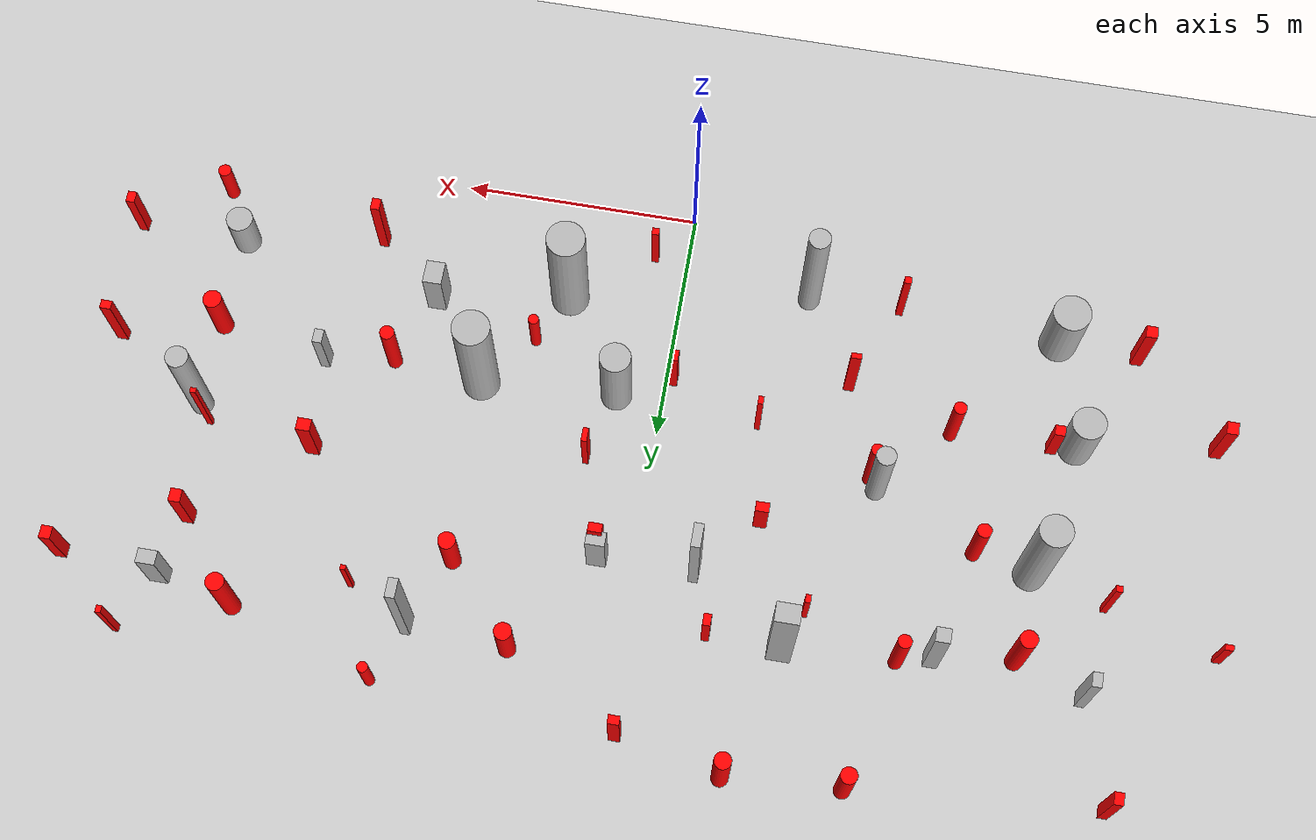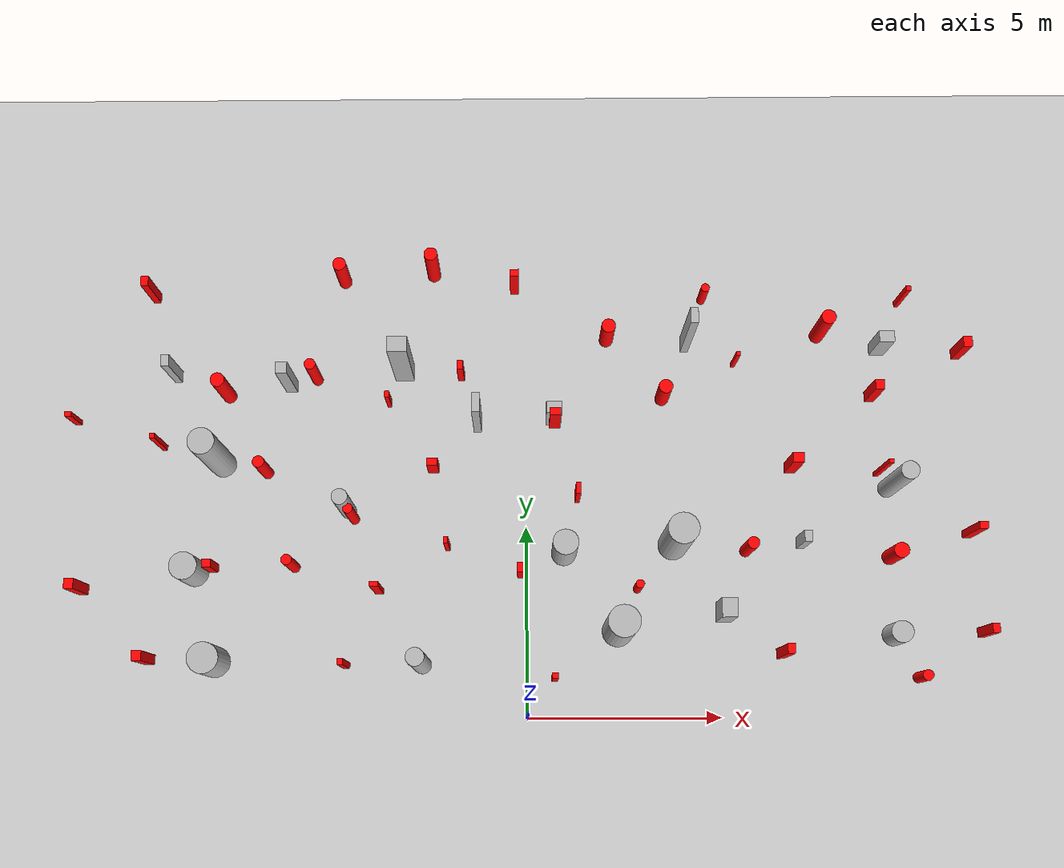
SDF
<sdf version="1.7">
 <world name="default">
  <model name="ground_plane">
   <static>1</static>
   <link name="link">
    <collision name="collision">
     <geometry><plane><normal>0 0 1</normal><size>100 100</size></plane></geometry>
     <surface>
      <contact><collide_bitmask>65535</collide_bitmask></contact>
      <friction><ode><mu>100</mu><mu2>50</mu2></ode></friction>
     </surface>
    </collision>
    <visual name="visual">
     <cast_shadows>0</cast_shadows>
     <geometry><plane><normal>0 0 1</normal><size>100 100</size></plane></geometry>
     <material>
      <script><uri>file://media/materials/scripts/gazebo.material</uri><name>Gazebo/Grey</name></script>
     </material>
    </visual>
   </link>
  </model>
  <model name="cylinder_0_0.7_0.7_2.1">
   <static>true</static>
   <pose>0.9762700785464951 4.30378732744839 1.0448831829968968 0 0 0</pose>
   <link name="link">
    <visual name="visual">
     <geometry>
      <cylinder><radius>0.3270964398016714</radius><length>2.0897663659937935</length></cylinder>
     </geometry>
    </visual>
   </link>
  </model>
  <model name="cylinder_4_0.5_0.5_2.6">
   <static>true</static>
   <pose>9.572366844655281 5.983171284334471 1.2805291762864555 0 0 0</pose>
   <link name="link">
    <visual name="visual">
     <geometry>
      <cylinder><radius>0.23548232776067998</radius><length>2.561058352572911</length></cylinder>
     </geometry>
    </visual>
   </link>
  </model>
  <model name="cylinder_6_0.4_0.4_2.1">
   <static>true</static>
   <pose>-4.70888775790746 5.484673788684333 1.0684339488686485 0 0 0</pose>
   <link name="link">
    <visual name="visual">
     <geometry>
      <cylinder><radius>0.20563694013090655</radius><length>2.136867897737297</length></cylinder>
     </geometry>
    </visual>
   </link>
  </model>
  <model name="cylinder_7_0.8_0.8_2.9">
   <static>true</static>
   <pose>2.352709941517542 2.2419144544484286 1.4437480785146242 0 0 0</pose>
   <link name="link">
    <visual name="visual">
     <geometry>
      <cylinder><radius>0.404546089731045</radius><length>2.8874961570292483</length></cylinder>
     </geometry>
    </visual>
   </link>
  </model>
  <model name="cylinder_9_0.5_0.5_3.0">
   <static>true</static>
   <pose>-2.725784581147548 1.4039354083575937 1.4883738380592262 0 0 0</pose>
   <link name="link">
    <visual name="visual">
     <geometry>
      <cylinder><radius>0.23061344322440844</radius><length>2.9767476761184524</length></cylinder>
     </geometry>
    </visual>
   </link>
  </model>
  <model name="cylinder_11_0.7_0.7_3.0">
   <static>true</static>
   <pose>-8.057974484138775 6.758898149976076 1.4764594650133958 0 0 0</pose>
   <link name="link">
    <visual name="visual">
     <geometry>
      <cylinder><radius>0.3405953604943105</radius><length>2.9529189300267915</length></cylinder>
     </geometry>
    </visual>
   </link>
  </model>
  <model name="cylinder_12_0.6_0.6_1.1">
   <static>true</static>
   <pose>9.535221763806742 2.0969103949009202 0.5391877922543207 0 0 0</pose>
   <link name="link">
    <visual name="visual">
     <geometry>
      <cylinder><radius>0.2848420887729229</radius><length>1.0783755845086413</length></cylinder>
     </geometry>
    </visual>
   </link>
  </model>
  <model name="cylinder_14_0.7_0.7_1.5">
   <static>true</static>
   <pose>-8.717050073024312 3.849442387400398 0.7653894909394454 0 0 0</pose>
   <link name="link">
    <visual name="visual">
     <geometry>
      <cylinder><radius>0.3569744160400099</radius><length>1.5307789818788908</length></cylinder>
     </geometry>
    </visual>
   </link>
  </model>
  <model name="cylinder_15_0.8_0.8_1.6">
   <static>true</static>
   <pose>-8.121189784831166 1.5189299111235854 0.8185689524513237 0 0 0</pose>
   <link name="link">
    <visual name="visual">
     <geometry>
      <cylinder><radius>0.4002231139891045</radius><length>1.6371379049026473</length></cylinder>
     </geometry>
    </visual>
   </link>
  </model>
  <model name="cylinder_19_0.8_0.8_2.9">
   <static>true</static>
   <pose>3.850631801555318 4.50508559639281 1.4560836347232238 0 0 0</pose>
   <link name="link">
    <visual name="visual">
     <geometry>
      <cylinder><radius>0.3931970597688912</radius><length>2.9121672694464475</length></cylinder>
     </geometry>
    </visual>
   </link>
  </model>
  <model name="box_1_0.2_0.5_2.4">
   <static>true</static>
   <pose>-1.2827014946874638 7.838467100313441 1.2038885835403663 0 0 0</pose>
   <link name="link">
    <visual name="visual"><geometry><box><size>0.2 0.5 2.4</size></box></geometry></visual>
   </link>
  </model>
  <model name="box_2_0.2_0.4_2.7">
   <static>true</static>
   <pose>4.2848259909822275 9.976940131357331 1.3681260573682144 0 0 0</pose>
   <link name="link">
    <visual name="visual"><geometry><box><size>0.2 0.4 2.7</size></box></geometry></visual>
   </link>
  </model>
  <model name="box_6_0.3_0.3_2.0">
   <static>true</static>
   <pose>-6.276139882393277 8.887447799678672 0.9904588086175671 0 0 0</pose>
   <link name="link">
    <visual name="visual"><geometry><box><size>0.3 0.3 2.0</size></box></geometry></visual>
   </link>
  </model>
  <model name="box_8_0.4_0.3_1.4">
   <static>true</static>
   <pose>0.731584222174444 7.933425860806842 0.7168969843984739 0 0 0</pose>
   <link name="link">
    <visual name="visual"><geometry><box><size>0.4 0.3 1.4</size></box></geometry></visual>
   </link>
  </model>
  <model name="box_12_0.5_0.4_2.9">
   <static>true</static>
   <pose>-3.236820963263087 9.231403090829971 1.4493188224156814 0 0 0</pose>
   <link name="link">
    <visual name="visual"><geometry><box><size>0.5 0.4 2.9</size></box></geometry></visual>
   </link>
  </model>
  <model name="box_15_0.2_0.3_1.3">
   <static>true</static>
   <pose>7.211023476575875 4.540885254226566 0.6314827992911276 0 0 0</pose>
   <link name="link">
    <visual name="visual"><geometry><box><size>0.2 0.3 1.3</size></box></geometry></visual>
   </link>
  </model>
  <model name="box_16_0.4_0.5_1.3">
   <static>true</static>
   <pose>5.135572854737784 2.721221108942826 0.6605388224852564 0 0 0</pose>
   <link name="link">
    <visual name="visual"><geometry><box><size>0.4 0.5 1.3</size></box></geometry></visual>
   </link>
  </model>
  <model name="box_17_0.2_0.3_1.7">
   <static>true</static>
   <pose>-9.333907469066077 9.17965443726947 0.8567068904025429 0 0 0</pose>
   <link name="link">
    <visual name="visual"><geometry><box><size>0.2 0.3 1.7</size></box></geometry></visual>
   </link>
  </model>
  <model name="box_18_0.4_0.3_1.3">
   <static>true</static>
   <pose>9.485124256361004 9.806900031217879 0.6629544260466054 0 0 0</pose>
   <link name="link">
    <visual name="visual"><geometry><box><size>0.4 0.3 1.3</size></box></geometry></visual>
   </link>
  </model>
  <model name="dynamic_cylinder_0_0.3_0.3_1.6">
   <static>true</static>
   <pose>-6.094483560216853 3.9806188214205047 0.7826298825091915 0 0 0</pose>
   <link name="link">
    <visual name="visual">
     <geometry>
      <cylinder><radius>0.13605455604858924</radius><length>1.565259765018383</length></cylinder>
     </geometry>
     <material><ambient>1 0 0 1</ambient><diffuse>1 0 0 1</diffuse><specular>0.5 0.5 0.5 1</specular></material>
    </visual>
   </link>
   <plugin name="obstacle_motion" filename="libobstaclePathPlugin.so">
    <orientation>false</orientation>
    <loop>0</loop>
    <velocity>0.3829713738667128</velocity>
    <path>
     <waypoint>-6.094483560216853 3.9806188214205047 0.7826298825091915</waypoint>
     <waypoint>-1.8218642775396177 1.3125074078740546 0.7826298825091915</waypoint>
    </path>
   </plugin>
  </model>
  <model name="dynamic_cylinder_1_0.4_0.4_1.8">
   <static>true</static>
   <pose>7.887765949337705 10.199205886876612 0.894196571057319 0 0 0</pose>
   <link name="link">
    <visual name="visual">
     <geometry>
      <cylinder><radius>0.1904948345549927</radius><length>1.788393142114638</length></cylinder>
     </geometry>
     <material><ambient>1 0 0 1</ambient><diffuse>1 0 0 1</diffuse><specular>0.5 0.5 0.5 1</specular></material>
    </visual>
   </link>
   <plugin name="obstacle_motion" filename="libobstaclePathPlugin.so">
    <orientation>false</orientation>
    <loop>0</loop>
    <velocity>0.4937943409340704</velocity>
    <path>
     <waypoint>7.887765949337705 10.199205886876612 0.894196571057319</waypoint>
     <waypoint>-6.416952172085628 -3.6355351321784823 0.894196571057319</waypoint>
    </path>
   </plugin>
  </model>
  <model name="dynamic_cylinder_2_0.3_0.3_1.6">
   <static>true</static>
   <pose>-4.882649638463283 11.808269841947379 0.7759073060311001 0 0 0</pose>
   <link name="link">
    <visual name="visual">
     <geometry>
      <cylinder><radius>0.17307090991274762</radius><length>1.5518146120622003</length></cylinder>
     </geometry>
     <material><ambient>1 0 0 1</ambient><diffuse>1 0 0 1</diffuse><specular>0.5 0.5 0.5 1</specular></material>
    </visual>
   </link>
   <plugin name="obstacle_motion" filename="libobstaclePathPlugin.so">
    <orientation>false</orientation>
    <loop>0</loop>
    <velocity>0.3116712717961177</velocity>
    <path>
     <waypoint>-4.882649638463283 11.808269841947379 0.7759073060311001</waypoint>
     <waypoint>-9.458252282826427 10.82286266532946 0.7759073060311001</waypoint>
    </path>
   </plugin>
  </model>
  <model name="dynamic_cylinder_4_0.2_0.2_1.1">
   <static>true</static>
   <pose>4.789801445394033 11.23117359850145 0.5609418822750922 0 0 0</pose>
   <link name="link">
    <visual name="visual">
     <geometry>
      <cylinder><radius>0.11312893284732561</radius><length>1.1218837645501845</length></cylinder>
     </geometry>
     <material><ambient>1 0 0 1</ambient><diffuse>1 0 0 1</diffuse><specular>0.5 0.5 0.5 1</specular></material>
    </visual>
   </link>
   <plugin name="obstacle_motion" filename="libobstaclePathPlugin.so">
    <orientation>false</orientation>
    <loop>0</loop>
    <velocity>0.3834972749592024</velocity>
    <path>
     <waypoint>4.789801445394033 11.23117359850145 0.5609418822750922</waypoint>
     <waypoint>-1.1562796159257687 -10.299125323578998 0.5609418822750922</waypoint>
    </path>
   </plugin>
  </model>
  <model name="dynamic_cylinder_8_0.3_0.3_1.5">
   <static>true</static>
   <pose>5.762340614824382 4.332347547427823 0.7704969929109852 0 0 0</pose>
   <link name="link">
    <visual name="visual">
     <geometry>
      <cylinder><radius>0.15436780538280953</radius><length>1.5409939858219703</length></cylinder>
     </geometry>
     <material><ambient>1 0 0 1</ambient><diffuse>1 0 0 1</diffuse><specular>0.5 0.5 0.5 1</specular></material>
    </visual>
   </link>
   <plugin name="obstacle_motion" filename="libobstaclePathPlugin.so">
    <orientation>false</orientation>
    <loop>0</loop>
    <velocity>0.4758469526062654</velocity>
    <path>
     <waypoint>5.762340614824382 4.332347547427823 0.7704969929109852</waypoint>
     <waypoint>5.052681665336294 -7.081831512967158 0.7704969929109852</waypoint>
    </path>
   </plugin>
  </model>
  <model name="dynamic_cylinder_13_0.3_0.3_1.0">
   <static>true</static>
   <pose>10.136351563119192 0.9931390501712585 0.5144135269714278 0 0 0</pose>
   <link name="link">
    <visual name="visual">
     <geometry>
      <cylinder><radius>0.1389134677101186</radius><length>1.0288270539428557</length></cylinder>
     </geometry>
     <material><ambient>1 0 0 1</ambient><diffuse>1 0 0 1</diffuse><specular>0.5 0.5 0.5 1</specular></material>
    </visual>
   </link>
   <plugin name="obstacle_motion" filename="libobstaclePathPlugin.so">
    <orientation>false</orientation>
    <loop>0</loop>
    <velocity>0.33495440083218797</velocity>
    <path>
     <waypoint>10.136351563119192 0.9931390501712585 0.5144135269714278</waypoint>
     <waypoint>7.917536846480235 11.238873847063136 0.5144135269714278</waypoint>
    </path>
   </plugin>
  </model>
  <model name="dynamic_cylinder_15_0.4_0.4_1.4">
   <static>true</static>
   <pose>9.553496573129642 4.141975471116513 0.6882595796855638 0 0 0</pose>
   <link name="link">
    <visual name="visual">
     <geometry>
      <cylinder><radius>0.19795269293354587</radius><length>1.3765191593711277</length></cylinder>
     </geometry>
     <material><ambient>1 0 0 1</ambient><diffuse>1 0 0 1</diffuse><specular>0.5 0.5 0.5 1</specular></material>
    </visual>
   </link>
   <plugin name="obstacle_motion" filename="libobstaclePathPlugin.so">
    <orientation>false</orientation>
    <loop>0</loop>
    <velocity>0.3756490349846924</velocity>
    <path>
     <waypoint>9.553496573129642 4.141975471116513 0.6882595796855638</waypoint>
     <waypoint>-4.693287255662922 11.95109403188816 0.6882595796855638</waypoint>
    </path>
   </plugin>
  </model>
  <model name="dynamic_cylinder_18_0.4_0.4_1.8">
   <static>true</static>
   <pose>-2.465838067966992 11.982671854132107 0.8904902653815281 0 0 0</pose>
   <link name="link">
    <visual name="visual">
     <geometry>
      <cylinder><radius>0.17645619743577087</radius><length>1.7809805307630562</length></cylinder>
     </geometry>
     <material><ambient>1 0 0 1</ambient><diffuse>1 0 0 1</diffuse><specular>0.5 0.5 0.5 1</specular></material>
    </visual>
   </link>
   <plugin name="obstacle_motion" filename="libobstaclePathPlugin.so">
    <orientation>false</orientation>
    <loop>0</loop>
    <velocity>0.47795873128910804</velocity>
    <path>
     <waypoint>-2.465838067966992 11.982671854132107 0.8904902653815281</waypoint>
     <waypoint>5.313760031038861 3.3019846687390277 0.8904902653815281</waypoint>
    </path>
   </plugin>
  </model>
  <model name="dynamic_cylinder_21_0.4_0.4_1.8">
   <static>true</static>
   <pose>-7.943390252900129 8.629940074070916 0.8919849305369237 0 0 0</pose>
   <link name="link">
    <visual name="visual">
     <geometry>
      <cylinder><radius>0.18571249175045673</radius><length>1.7839698610738475</length></cylinder>
     </geometry>
     <material><ambient>1 0 0 1</ambient><diffuse>1 0 0 1</diffuse><specular>0.5 0.5 0.5 1</specular></material>
    </visual>
   </link>
   <plugin name="obstacle_motion" filename="libobstaclePathPlugin.so">
    <orientation>false</orientation>
    <loop>0</loop>
    <velocity>0.38474127069109454</velocity>
    <path>
     <waypoint>-7.943390252900129 8.629940074070916 0.8919849305369237</waypoint>
     <waypoint>-0.705098305966251 -9.219983968778752 0.8919849305369237</waypoint>
    </path>
   </plugin>
  </model>
  <model name="dynamic_cylinder_26_0.3_0.3_1.7">
   <static>true</static>
   <pose>-5.5870312353043525 9.05757094017887 0.8435109872927609 0 0 0</pose>
   <link name="link">
    <visual name="visual">
     <geometry>
      <cylinder><radius>0.14445872878113009</radius><length>1.6870219745855217</length></cylinder>
     </geometry>
     <material><ambient>1 0 0 1</ambient><diffuse>1 0 0 1</diffuse><specular>0.5 0.5 0.5 1</specular></material>
    </visual>
   </link>
   <plugin name="obstacle_motion" filename="libobstaclePathPlugin.so">
    <orientation>false</orientation>
    <loop>0</loop>
    <velocity>0.391700633413289</velocity>
    <path>
     <waypoint>-5.5870312353043525 9.05757094017887 0.8435109872927609</waypoint>
     <waypoint>-11.966799600024022 -6.055559460184417 0.8435109872927609</waypoint>
    </path>
   </plugin>
  </model>
  <model name="dynamic_cylinder_33_0.3_0.3_1.8">
   <static>true</static>
   <pose>-4.539840548560416 5.2470333681876475 0.8895274787383933 0 0 0</pose>
   <link name="link">
    <visual name="visual">
     <geometry>
      <cylinder><radius>0.12908409066567428</radius><length>1.7790549574767867</length></cylinder>
     </geometry>
     <material><ambient>1 0 0 1</ambient><diffuse>1 0 0 1</diffuse><specular>0.5 0.5 0.5 1</specular></material>
    </visual>
   </link>
   <plugin name="obstacle_motion" filename="libobstaclePathPlugin.so">
    <orientation>false</orientation>
    <loop>0</loop>
    <velocity>0.33247158958253337</velocity>
    <path>
     <waypoint>-4.539840548560416 5.2470333681876475 0.8895274787383933</waypoint>
     <waypoint>5.466510557146034 7.564785487543524 0.8895274787383933</waypoint>
    </path>
   </plugin>
  </model>
  <model name="dynamic_cylinder_35_0.4_0.4_1.4">
   <static>true</static>
   <pose>2.1855691400157653 10.121257604899998 0.6969445626763536 0 0 0</pose>
   <link name="link">
    <visual name="visual">
     <geometry>
      <cylinder><radius>0.18339816438766318</radius><length>1.3938891253527073</length></cylinder>
     </geometry>
     <material><ambient>1 0 0 1</ambient><diffuse>1 0 0 1</diffuse><specular>0.5 0.5 0.5 1</specular></material>
    </visual>
   </link>
   <plugin name="obstacle_motion" filename="libobstaclePathPlugin.so">
    <orientation>false</orientation>
    <loop>0</loop>
    <velocity>0.47476643566694365</velocity>
    <path>
     <waypoint>2.1855691400157653 10.121257604899998 0.6969445626763536</waypoint>
     <waypoint>5.374593564031819 1.420170770440853 0.6969445626763536</waypoint>
    </path>
   </plugin>
  </model>
  <model name="dynamic_cylinder_36_0.3_0.3_1.6">
   <static>true</static>
   <pose>-6.867951676761923 6.509411111181844 0.7947412646723142 0 0 0</pose>
   <link name="link">
    <visual name="visual">
     <geometry>
      <cylinder><radius>0.15149222019367686</radius><length>1.5894825293446284</length></cylinder>
     </geometry>
     <material><ambient>1 0 0 1</ambient><diffuse>1 0 0 1</diffuse><specular>0.5 0.5 0.5 1</specular></material>
    </visual>
   </link>
   <plugin name="obstacle_motion" filename="libobstaclePathPlugin.so">
    <orientation>false</orientation>
    <loop>0</loop>
    <velocity>0.3195352734895448</velocity>
    <path>
     <waypoint>-6.867951676761923 6.509411111181844 0.7947412646723142</waypoint>
     <waypoint>-4.2520910988458995 -6.490381327393205 0.7947412646723142</waypoint>
    </path>
   </plugin>
  </model>
  <model name="dynamic_cylinder_37_0.2_0.2_1.1">
   <static>true</static>
   <pose>2.8919976067197055 3.3509338311297974 0.5741394347917531 0 0 0</pose>
   <link name="link">
    <visual name="visual">
     <geometry>
      <cylinder><radius>0.11293557610386996</radius><length>1.1482788695835062</length></cylinder>
     </geometry>
     <material><ambient>1 0 0 1</ambient><diffuse>1 0 0 1</diffuse><specular>0.5 0.5 0.5 1</specular></material>
    </visual>
   </link>
   <plugin name="obstacle_motion" filename="libobstaclePathPlugin.so">
    <orientation>false</orientation>
    <loop>0</loop>
    <velocity>0.499163058591927</velocity>
    <path>
     <waypoint>2.8919976067197055 3.3509338311297974 0.5741394347917531</waypoint>
     <waypoint>6.678628015114651 8.360286474960144 0.5741394347917531</waypoint>
    </path>
   </plugin>
  </model>
  <model name="dynamic_cylinder_38_0.4_0.4_1.4">
   <static>true</static>
   <pose>3.6509902762113366 8.477903427804307 0.6935011458806944 0 0 0</pose>
   <link name="link">
    <visual name="visual">
     <geometry>
      <cylinder><radius>0.18237176720231696</radius><length>1.387002291761389</length></cylinder>
     </geometry>
     <material><ambient>1 0 0 1</ambient><diffuse>1 0 0 1</diffuse><specular>0.5 0.5 0.5 1</specular></material>
    </visual>
   </link>
   <plugin name="obstacle_motion" filename="libobstaclePathPlugin.so">
    <orientation>false</orientation>
    <loop>0</loop>
    <velocity>0.35122275900400357</velocity>
    <path>
     <waypoint>3.6509902762113366 8.477903427804307 0.6935011458806944</waypoint>
     <waypoint>11.260940921224446 -5.6248188590052655 0.6935011458806944</waypoint>
    </path>
   </plugin>
  </model>
  <model name="dynamic_box_0_0.3_0.2_1.0">
   <static>true</static>
   <pose>-2.4499532439614953 6.588022917220847 0.5312582238133927 0 0 0</pose>
   <link name="link">
    <visual name="visual">
     <geometry><box><size>0.2826568681770961 0.20491541349572517 1.0343249523220466</size></box></geometry>
     <material><ambient>1 0 0 1</ambient><diffuse>1 0 0 1</diffuse><specular>0.5 0.5 0.5 1</specular></material>
    </visual>
   </link>
   <plugin name="obstacle_motion" filename="libobstaclePathPlugin.so">
    <orientation>false</orientation>
    <loop>0</loop>
    <velocity>0.44017112988954754</velocity>
    <path>
     <waypoint>-2.4499532439614953 6.588022917220847 0.5312582238133927</waypoint>
     <waypoint>11.216107248887571 8.66695219357888 0.5789281744179476</waypoint>
    </path>
   </plugin>
  </model>
  <model name="dynamic_box_3_0.2_0.2_1.6">
   <static>true</static>
   <pose>11.612491912358802 4.735926019921237 0.8270611917364601 0 0 0</pose>
   <link name="link">
    <visual name="visual">
     <geometry><box><size>0.23293311730688773 0.18461088803322423 1.5762126820038065</size></box></geometry>
     <material><ambient>1 0 0 1</ambient><diffuse>1 0 0 1</diffuse><specular>0.5 0.5 0.5 1</specular></material>
    </visual>
   </link>
   <plugin name="obstacle_motion" filename="libobstaclePathPlugin.so">
    <orientation>false</orientation>
    <loop>0</loop>
    <velocity>0.4850790050584881</velocity>
    <path>
     <waypoint>11.612491912358802 4.735926019921237 0.8270611917364601</waypoint>
     <waypoint>-5.669575525188909 10.67101724213098 0.8016611843127539</waypoint>
    </path>
   </plugin>
  </model>
  <model name="dynamic_box_4_0.1_0.1_1.5">
   <static>true</static>
   <pose>-9.633351150652535 7.225797126127311 0.7549822637175555 0 0 0</pose>
   <link name="link">
    <visual name="visual">
     <geometry><box><size>0.13396390063434294 0.12967578753547512 1.5017285691694866</size></box></geometry>
     <material><ambient>1 0 0 1</ambient><diffuse>1 0 0 1</diffuse><specular>0.5 0.5 0.5 1</specular></material>
    </visual>
   </link>
   <plugin name="obstacle_motion" filename="libobstaclePathPlugin.so">
    <orientation>false</orientation>
    <loop>0</loop>
    <velocity>0.4004906148625794</velocity>
    <path>
     <waypoint>-9.633351150652535 7.225797126127311 0.7549822637175555</waypoint>
     <waypoint>7.594104749144538 7.381531299836965 0.7559650154676189</waypoint>
    </path>
   </plugin>
  </model>
  <model name="dynamic_box_5_0.2_0.3_1.8">
   <static>true</static>
   <pose>6.558219025608558 1.6246259720842566 0.9736023682772382 0 0 0</pose>
   <link name="link">
    <visual name="visual">
     <geometry><box><size>0.19164245195172241 0.25148131116434513 1.75060490957117</size></box></geometry>
     <material><ambient>1 0 0 1</ambient><diffuse>1 0 0 1</diffuse><specular>0.5 0.5 0.5 1</specular></material>
    </visual>
   </link>
   <plugin name="obstacle_motion" filename="libobstaclePathPlugin.so">
    <orientation>false</orientation>
    <loop>0</loop>
    <velocity>0.34891392180411257</velocity>
    <path>
     <waypoint>6.558219025608558 1.6246259720842566 0.9736023682772382</waypoint>
     <waypoint>11.57394665492026 11.824007843142393 0.8871640066221615</waypoint>
    </path>
   </plugin>
  </model>
  <model name="dynamic_box_9_0.1_0.2_1.6">
   <static>true</static>
   <pose>-4.678879239291322 1.391697614631184 0.9055223540851829 0 0 0</pose>
   <link name="link">
    <visual name="visual">
     <geometry><box><size>0.14750462759726995 0.15426122025169325 1.6145557315702237</size></box></geometry>
     <material><ambient>1 0 0 1</ambient><diffuse>1 0 0 1</diffuse><specular>0.5 0.5 0.5 1</specular></material>
    </visual>
   </link>
   <plugin name="obstacle_motion" filename="libobstaclePathPlugin.so">
    <orientation>false</orientation>
    <loop>0</loop>
    <velocity>0.4055429451145732</velocity>
    <path>
     <waypoint>-4.678879239291322 1.391697614631184 0.9055223540851829</waypoint>
     <waypoint>-2.3892351663378406 3.980913559436157 0.8473658221483104</waypoint>
    </path>
   </plugin>
  </model>
  <model name="dynamic_box_10_0.1_0.2_1.5">
   <static>true</static>
   <pose>-2.0692747234016142 4.473125520011351 0.7606252336550268 0 0 0</pose>
   <link name="link">
    <visual name="visual">
     <geometry><box><size>0.11564921993809377 0.17425738885649986 1.462072072034679</size></box></geometry>
     <material><ambient>1 0 0 1</ambient><diffuse>1 0 0 1</diffuse><specular>0.5 0.5 0.5 1</specular></material>
    </visual>
   </link>
   <plugin name="obstacle_motion" filename="libobstaclePathPlugin.so">
    <orientation>false</orientation>
    <loop>0</loop>
    <velocity>0.3150554559665469</velocity>
    <path>
     <waypoint>-2.0692747234016142 4.473125520011351 0.7606252336550268</waypoint>
     <waypoint>-4.720993885928014 -3.458660288619164 0.8120662441716627</waypoint>
    </path>
   </plugin>
  </model>
  <model name="dynamic_box_11_0.1_0.1_1.8">
   <static>true</static>
   <pose>9.294795629644462 6.3616787797953585 0.927506470030102 0 0 0</pose>
   <link name="link">
    <visual name="visual">
     <geometry><box><size>0.12366988680389382 0.10503805785810123 1.7922948177116638</size></box></geometry>
     <material><ambient>1 0 0 1</ambient><diffuse>1 0 0 1</diffuse><specular>0.5 0.5 0.5 1</specular></material>
    </visual>
   </link>
   <plugin name="obstacle_motion" filename="libobstaclePathPlugin.so">
    <orientation>false</orientation>
    <loop>0</loop>
    <velocity>0.48243019060231773</velocity>
    <path>
     <waypoint>9.294795629644462 6.3616787797953585 0.927506470030102</waypoint>
     <waypoint>-3.227063325166167 -7.169597621739229 0.9448622215475694</waypoint>
    </path>
   </plugin>
  </model>
  <model name="dynamic_box_13_0.2_0.2_1.4">
   <static>true</static>
   <pose>-0.15823290505972487 3.7690482459941563 0.7419789868610605 0 0 0</pose>
   <link name="link">
    <visual name="visual">
     <geometry><box><size>0.17940273335552667 0.24088030788023473 1.3917479298916393</size></box></geometry>
     <material><ambient>1 0 0 1</ambient><diffuse>1 0 0 1</diffuse><specular>0.5 0.5 0.5 1</specular></material>
    </visual>
   </link>
   <plugin name="obstacle_motion" filename="libobstaclePathPlugin.so">
    <orientation>false</orientation>
    <loop>0</loop>
    <velocity>0.32633745636289135</velocity>
    <path>
     <waypoint>-0.15823290505972487 3.7690482459941563 0.7419789868610605</waypoint>
     <waypoint>10.443852289867813 9.234355735185119 0.7660717244624393</waypoint>
    </path>
   </plugin>
  </model>
  <model name="dynamic_box_14_0.2_0.3_1.3">
   <static>true</static>
   <pose>11.60241547762983 9.651149155301571 0.673805844614612 0 0 0</pose>
   <link name="link">
    <visual name="visual">
     <geometry><box><size>0.23430553935315163 0.26859465928021686 1.2558671115065234</size></box></geometry>
     <material><ambient>1 0 0 1</ambient><diffuse>1 0 0 1</diffuse><specular>0.5 0.5 0.5 1</specular></material>
    </visual>
   </link>
   <plugin name="obstacle_motion" filename="libobstaclePathPlugin.so">
    <orientation>false</orientation>
    <loop>0</loop>
    <velocity>0.3392901983641908</velocity>
    <path>
     <waypoint>11.60241547762983 9.651149155301571 0.673805844614612</waypoint>
     <waypoint>7.61887832683599 6.457127863683375 0.6957230527151138</waypoint>
    </path>
   </plugin>
  </model>
  <model name="dynamic_box_15_0.2_0.3_1.4">
   <static>true</static>
   <pose>-11.609933071743129 3.4272810074042894 0.7501941440762958 0 0 0</pose>
   <link name="link">
    <visual name="visual">
     <geometry><box><size>0.24257846053978127 0.2660952690241919 1.4118136832281492</size></box></geometry>
     <material><ambient>1 0 0 1</ambient><diffuse>1 0 0 1</diffuse><specular>0.5 0.5 0.5 1</specular></material>
    </visual>
   </link>
   <plugin name="obstacle_motion" filename="libobstaclePathPlugin.so">
    <orientation>false</orientation>
    <loop>0</loop>
    <velocity>0.3280879042742106</velocity>
    <path>
     <waypoint>-11.609933071743129 3.4272810074042894 0.7501941440762958</waypoint>
     <waypoint>9.554106123047607 -4.284649659499074 0.7533253228404367</waypoint>
    </path>
   </plugin>
  </model>
  <model name="dynamic_box_17_0.1_0.3_1.3">
   <static>true</static>
   <pose>1.3425045314065613 5.798474571655767 0.748405811403979 0 0 0</pose>
   <link name="link">
    <visual name="visual">
     <geometry><box><size>0.12101893884979985 0.2965147777361825 1.342702810484685</size></box></geometry>
     <material><ambient>1 0 0 1</ambient><diffuse>1 0 0 1</diffuse><specular>0.5 0.5 0.5 1</specular></material>
    </visual>
   </link>
   <plugin name="obstacle_motion" filename="libobstaclePathPlugin.so">
    <orientation>false</orientation>
    <loop>0</loop>
    <velocity>0.48463180423474805</velocity>
    <path>
     <waypoint>1.3425045314065613 5.798474571655767 0.748405811403979</waypoint>
     <waypoint>9.797961101629895 -8.391605835087113 0.7271797476592673</waypoint>
    </path>
   </plugin>
  </model>
  <model name="dynamic_box_18_0.1_0.2_1.1">
   <static>true</static>
   <pose>-3.6320352547591757 8.371992614505842 0.6314873975634193 0 0 0</pose>
   <link name="link">
    <visual name="visual">
     <geometry><box><size>0.1119515835920788 0.17005424146897083 1.1019991054159908</size></box></geometry>
     <material><ambient>1 0 0 1</ambient><diffuse>1 0 0 1</diffuse><specular>0.5 0.5 0.5 1</specular></material>
    </visual>
   </link>
   <plugin name="obstacle_motion" filename="libobstaclePathPlugin.so">
    <orientation>false</orientation>
    <loop>0</loop>
    <velocity>0.46812818164009556</velocity>
    <path>
     <waypoint>-3.6320352547591757 8.371992614505842 0.6314873975634193</waypoint>
     <waypoint>11.960517050382467 8.335384520009637 0.5924452061885633</waypoint>
    </path>
   </plugin>
  </model>
  <model name="dynamic_box_19_0.1_0.1_1.4">
   <static>true</static>
   <pose>10.073711538510572 11.058395362682418 0.7828037308746583 0 0 0</pose>
   <link name="link">
    <visual name="visual">
     <geometry><box><size>0.11371936695077688 0.1457815199448788 1.437494543045073</size></box></geometry>
     <material><ambient>1 0 0 1</ambient><diffuse>1 0 0 1</diffuse><specular>0.5 0.5 0.5 1</specular></material>
    </visual>
   </link>
   <plugin name="obstacle_motion" filename="libobstaclePathPlugin.so">
    <orientation>false</orientation>
    <loop>0</loop>
    <velocity>0.36802014922482224</velocity>
    <path>
     <waypoint>10.073711538510572 11.058395362682418 0.7828037308746583</waypoint>
     <waypoint>4.527559607609124 -10.98109227058746 0.7701953056314913</waypoint>
    </path>
   </plugin>
  </model>
  <model name="dynamic_box_20_0.1_0.1_1.2">
   <static>true</static>
   <pose>5.571413259352834 9.36267699325937 0.7219216594104638 0 0 0</pose>
   <link name="link">
    <visual name="visual">
     <geometry><box><size>0.10855262758955977 0.10007346875029158 1.2460256313749696</size></box></geometry>
     <material><ambient>1 0 0 1</ambient><diffuse>1 0 0 1</diffuse><specular>0.5 0.5 0.5 1</specular></material>
    </visual>
   </link>
   <plugin name="obstacle_motion" filename="libobstaclePathPlugin.so">
    <orientation>false</orientation>
    <loop>0</loop>
    <velocity>0.4751384540469846</velocity>
    <path>
     <waypoint>5.571413259352834 9.36267699325937 0.7219216594104638</waypoint>
     <waypoint>3.9085554853708757 8.288748448026311 0.7008167003799547</waypoint>
    </path>
   </plugin>
  </model>
  <model name="dynamic_box_22_0.2_0.3_1.5">
   <static>true</static>
   <pose>-9.97892964688362 11.37343977537287 0.8188162910218003 0 0 0</pose>
   <link name="link">
    <visual name="visual">
     <geometry><box><size>0.1938768710290306 0.25189005029152856 1.497505913115492</size></box></geometry>
     <material><ambient>1 0 0 1</ambient><diffuse>1 0 0 1</diffuse><specular>0.5 0.5 0.5 1</specular></material>
    </visual>
   </link>
   <plugin name="obstacle_motion" filename="libobstaclePathPlugin.so">
    <orientation>false</orientation>
    <loop>0</loop>
    <velocity>0.4057483023398896</velocity>
    <path>
     <waypoint>-9.97892964688362 11.37343977537287 0.8188162910218003</waypoint>
     <waypoint>8.203577745722047 1.600064144712828 0.796433092950632</waypoint>
    </path>
   </plugin>
  </model>
  <model name="dynamic_box_24_0.2_0.2_1.2">
   <static>true</static>
   <pose>-1.7232322158112297 9.145598704236207 0.6000387282019926 0 0 0</pose>
   <link name="link">
    <visual name="visual">
     <geometry><box><size>0.1636805869221175 0.24578953922868457 1.19862125361576</size></box></geometry>
     <material><ambient>1 0 0 1</ambient><diffuse>1 0 0 1</diffuse><specular>0.5 0.5 0.5 1</specular></material>
    </visual>
   </link>
   <plugin name="obstacle_motion" filename="libobstaclePathPlugin.so">
    <orientation>false</orientation>
    <loop>0</loop>
    <velocity>0.3555870714417917</velocity>
    <path>
     <waypoint>-1.7232322158112297 9.145598704236207 0.6000387282019926</waypoint>
     <waypoint>-11.198224977237118 2.1667181214916056 0.6304555663621001</waypoint>
    </path>
   </plugin>
  </model>
  <model name="dynamic_box_25_0.2_0.1_1.8">
   <static>true</static>
   <pose>-3.8483754275391657 3.311245073776824 0.936758422335512 0 0 0</pose>
   <link name="link">
    <visual name="visual">
     <geometry><box><size>0.22287350235366285 0.1135711635407551 1.7527602639025108</size></box></geometry>
     <material><ambient>1 0 0 1</ambient><diffuse>1 0 0 1</diffuse><specular>0.5 0.5 0.5 1</specular></material>
    </visual>
   </link>
   <plugin name="obstacle_motion" filename="libobstaclePathPlugin.so">
    <orientation>false</orientation>
    <loop>0</loop>
    <velocity>0.4151268145721963</velocity>
    <path>
     <waypoint>-3.8483754275391657 3.311245073776824 0.936758422335512</waypoint>
     <waypoint>-2.7401287261792397 0.7576253338175647 0.9408939853084214</waypoint>
    </path>
   </plugin>
  </model>
  <model name="dynamic_box_26_0.2_0.2_1.3">
   <static>true</static>
   <pose>0.7001824731037587 1.0273552500675258 0.7339143772698361 0 0 0</pose>
   <link name="link">
    <visual name="visual">
     <geometry><box><size>0.15670275645860687 0.15261575605931693 1.325017997524895</size></box></geometry>
     <material><ambient>1 0 0 1</ambient><diffuse>1 0 0 1</diffuse><specular>0.5 0.5 0.5 1</specular></material>
    </visual>
   </link>
   <plugin name="obstacle_motion" filename="libobstaclePathPlugin.so">
    <orientation>false</orientation>
    <loop>0</loop>
    <velocity>0.49261877804238546</velocity>
    <path>
     <waypoint>0.7001824731037587 1.0273552500675258 0.7339143772698361</waypoint>
     <waypoint>0.39734258638070585 -8.80617623558001 0.7398544659146388</waypoint>
    </path>
   </plugin>
  </model>
  <model name="dynamic_box_27_0.2_0.2_1.5">
   <static>true</static>
   <pose>-0.2776058895400091 11.523816898583817 0.8151916390081284 0 0 0</pose>
   <link name="link">
    <visual name="visual">
     <geometry><box><size>0.23428550922512406 0.1844814989537329 1.545861263250047</size></box></geometry>
     <material><ambient>1 0 0 1</ambient><diffuse>1 0 0 1</diffuse><specular>0.5 0.5 0.5 1</specular></material>
    </visual>
   </link>
   <plugin name="obstacle_motion" filename="libobstaclePathPlugin.so">
    <orientation>false</orientation>
    <loop>0</loop>
    <velocity>0.4611404676077355</velocity>
    <path>
     <waypoint>-0.2776058895400091 11.523816898583817 0.8151916390081284</waypoint>
     <waypoint>-4.1607544889758135 7.720126426309633 0.8277213015608267</waypoint>
    </path>
   </plugin>
  </model>
  <model name="dynamic_box_28_0.2_0.3_1.4">
   <static>true</static>
   <pose>9.211810714669394 8.482784000374973 0.7239181797358826 0 0 0</pose>
   <link name="link">
    <visual name="visual">
     <geometry><box><size>0.24004075374698725 0.2716955137203708 1.3765857239641852</size></box></geometry>
     <material><ambient>1 0 0 1</ambient><diffuse>1 0 0 1</diffuse><specular>0.5 0.5 0.5 1</specular></material>
    </visual>
   </link>
   <plugin name="obstacle_motion" filename="libobstaclePathPlugin.so">
    <orientation>false</orientation>
    <loop>0</loop>
    <velocity>0.30293316419441413</velocity>
    <path>
     <waypoint>9.211810714669394 8.482784000374973 0.7239181797358826</waypoint>
     <waypoint>6.1711146674175765 11.671897512038132 0.7409250231772258</waypoint>
    </path>
   </plugin>
  </model>
  <model name="dynamic_box_29_0.3_0.3_1.4">
   <static>true</static>
   <pose>7.0213240159307055 6.559973288877288 0.7124456953123308 0 0 0</pose>
   <link name="link">
    <visual name="visual">
     <geometry><box><size>0.29302326498389397 0.2593024511477507 1.4064354710919893</size></box></geometry>
     <material><ambient>1 0 0 1</ambient><diffuse>1 0 0 1</diffuse><specular>0.5 0.5 0.5 1</specular></material>
    </visual>
   </link>
   <plugin name="obstacle_motion" filename="libobstaclePathPlugin.so">
    <orientation>false</orientation>
    <loop>0</loop>
    <velocity>0.39221880006067145</velocity>
    <path>
     <waypoint>7.0213240159307055 6.559973288877288 0.7124456953123308</waypoint>
     <waypoint>4.4523052570986295 5.184574101205847 0.7894343622501974</waypoint>
    </path>
   </plugin>
  </model>
  <model name="dynamic_box_30_0.2_0.2_1.1">
   <static>true</static>
   <pose>-8.206566393571382 3.9619589794087986 0.6283571781405991 0 0 0</pose>
   <link name="link">
    <visual name="visual">
     <geometry><box><size>0.22041510443895962 0.2180842950060527 1.1090338680781149</size></box></geometry>
     <material><ambient>1 0 0 1</ambient><diffuse>1 0 0 1</diffuse><specular>0.5 0.5 0.5 1</specular></material>
    </visual>
   </link>
   <plugin name="obstacle_motion" filename="libobstaclePathPlugin.so">
    <orientation>false</orientation>
    <loop>0</loop>
    <velocity>0.437258212074216</velocity>
    <path>
     <waypoint>-8.206566393571382 3.9619589794087986 0.6283571781405991</waypoint>
     <waypoint>2.1168426498920496 11.587280375230236 0.6044630829497148</waypoint>
    </path>
   </plugin>
  </model>
  <model name="dynamic_box_31_0.3_0.2_1.6">
   <static>true</static>
   <pose>0.7672162577560329 7.778514625516692 0.820477900756187 0 0 0</pose>
   <link name="link">
    <visual name="visual">
     <geometry><box><size>0.2892831017815437 0.19364429884362716 1.6054124847291225</size></box></geometry>
     <material><ambient>1 0 0 1</ambient><diffuse>1 0 0 1</diffuse><specular>0.5 0.5 0.5 1</specular></material>
    </visual>
   </link>
   <plugin name="obstacle_motion" filename="libobstaclePathPlugin.so">
    <orientation>false</orientation>
    <loop>0</loop>
    <velocity>0.3157992495592635</velocity>
    <path>
     <waypoint>0.7672162577560329 7.778514625516692 0.820477900756187</waypoint>
     <waypoint>-0.8418679512561038 2.6179035848572028 0.82118369984829</waypoint>
    </path>
   </plugin>
  </model>
  <model name="dynamic_box_33_0.2_0.3_1.5">
   <static>true</static>
   <pose>-9.807988843949396 1.5902845027207917 0.7457827751672768 0 0 0</pose>
   <link name="link">
    <visual name="visual">
     <geometry><box><size>0.2439704055542384 0.2534721723941974 1.475718145146434</size></box></geometry>
     <material><ambient>1 0 0 1</ambient><diffuse>1 0 0 1</diffuse><specular>0.5 0.5 0.5 1</specular></material>
    </visual>
   </link>
   <plugin name="obstacle_motion" filename="libobstaclePathPlugin.so">
    <orientation>false</orientation>
    <loop>0</loop>
    <velocity>0.4857284976139227</velocity>
    <path>
     <waypoint>-9.807988843949396 1.5902845027207917 0.7457827751672768</waypoint>
     <waypoint>-11.563847537370293 -3.5376932366962617 0.761913564479607</waypoint>
    </path>
   </plugin>
  </model>
  <model name="dynamic_box_35_0.2_0.2_1.3">
   <static>true</static>
   <pose>11.812260160749169 2.1389668918010933 0.7589307413077777 0 0 0</pose>
   <link name="link">
    <visual name="visual">
     <geometry><box><size>0.18577961851130362 0.2425993392709971 1.3331730959179569</size></box></geometry>
     <material><ambient>1 0 0 1</ambient><diffuse>1 0 0 1</diffuse><specular>0.5 0.5 0.5 1</specular></material>
    </visual>
   </link>
   <plugin name="obstacle_motion" filename="libobstaclePathPlugin.so">
    <orientation>false</orientation>
    <loop>0</loop>
    <velocity>0.46719291388579604</velocity>
    <path>
     <waypoint>11.812260160749169 2.1389668918010933 0.7589307413077777</waypoint>
     <waypoint>-11.706947528077874 -8.291049108583078 0.7350284524341374</waypoint>
    </path>
   </plugin>
  </model>
  <model name="dynamic_box_37_0.2_0.1_1.0">
   <static>true</static>
   <pose>-11.956332125267298 7.9180167646917425 0.5763083635398908 0 0 0</pose>
   <link name="link">
    <visual name="visual">
     <geometry><box><size>0.17520346699430062 0.11702118162271442 1.0232910382661715</size></box></geometry>
     <material><ambient>1 0 0 1</ambient><diffuse>1 0 0 1</diffuse><specular>0.5 0.5 0.5 1</specular></material>
    </visual>
   </link>
   <plugin name="obstacle_motion" filename="libobstaclePathPlugin.so">
    <orientation>false</orientation>
    <loop>0</loop>
    <velocity>0.32305623654757765</velocity>
    <path>
     <waypoint>-11.956332125267298 7.9180167646917425 0.5763083635398908</waypoint>
     <waypoint>6.478130849565382 -0.7050432013247274 0.6036648679971722</waypoint>
    </path>
   </plugin>
  </model>
 </world>
</sdf>
